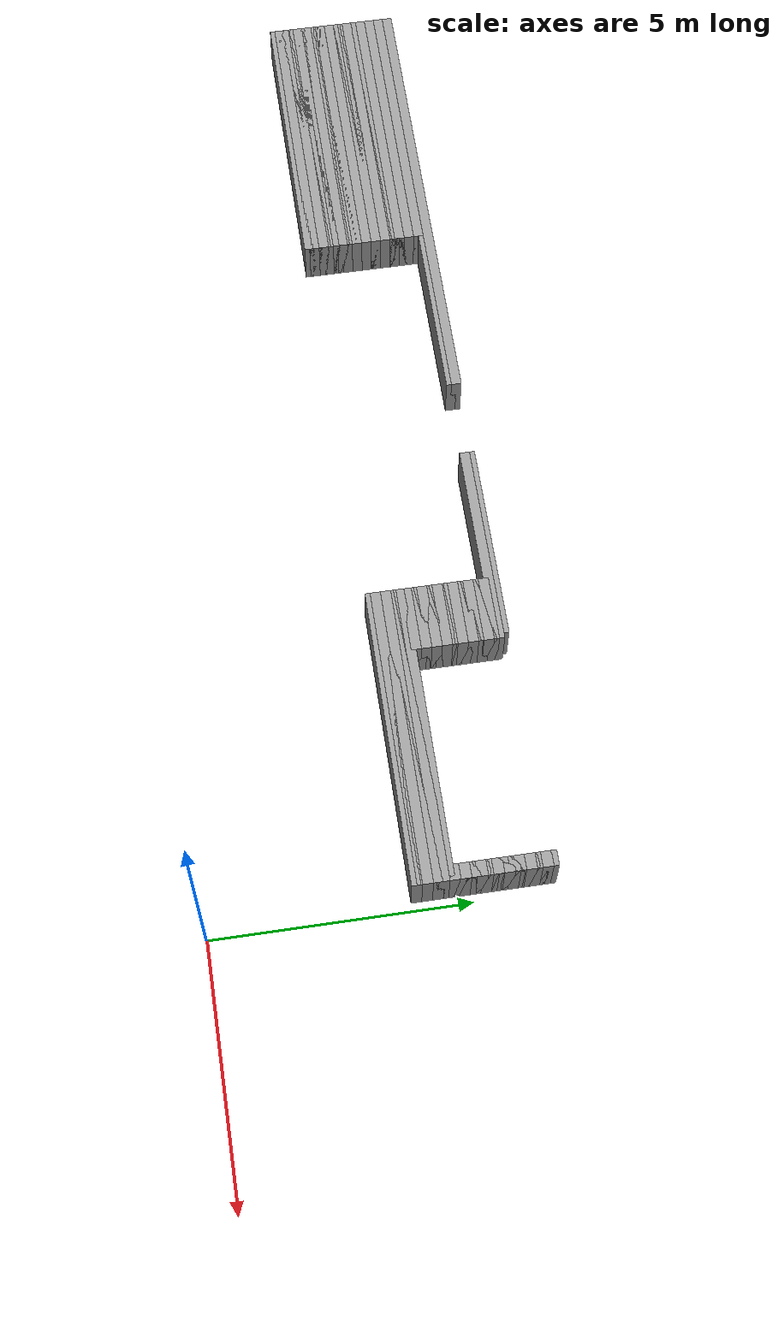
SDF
<sdf version="1.6">
 <world name="GridMap">
  <model name="GridMap">
   <link name="Wall_(169.5,38.0)">
    <collision name="Wall_(169.5,38.0)_Collision">
     <geometry><box><size>5.9 0.2 1.0</size></box></geometry>
     <pose>-16.95 3.8 0.5 0 -0 0</pose>
    </collision>
    <visual name="Wall_(169.5,38.0)_Visual">
     <geometry><box><size>5.9 0.2 1.0</size></box></geometry>
     <pose>-16.95 3.8 0.5 0 -0 0</pose>
     <material>
      <script><uri>file://media/materials/scripts/gazebo.material</uri><name>Gazebo/Grey</name></script>
      <ambient>1 1 1 1</ambient>
     </material>
     <meta><layer>0</layer></meta>
    </visual>
    <pose>0 0 0.5 0 -0 0</pose>
   </link>
   <link name="Wall_(29.5,39.0)">
    <collision name="Wall_(29.5,39.0)_Collision">
     <geometry><box><size>5.9 0.2 1.0</size></box></geometry>
     <pose>-2.95 3.9 0.5 0 -0 0</pose>
    </collision>
    <visual name="Wall_(29.5,39.0)_Visual">
     <geometry><box><size>5.9 0.2 1.0</size></box></geometry>
     <pose>-2.95 3.9 0.5 0 -0 0</pose>
     <material>
      <script><uri>file://media/materials/scripts/gazebo.material</uri><name>Gazebo/Grey</name></script>
      <ambient>1 1 1 1</ambient>
     </material>
     <meta><layer>0</layer></meta>
    </visual>
    <pose>0 0 0.5 0 -0 0</pose>
   </link>
   <link name="Wall_(169.5,39.0)">
    <collision name="Wall_(169.5,39.0)_Collision">
     <geometry><box><size>5.9 0.2 1.0</size></box></geometry>
     <pose>-16.95 3.9 0.5 0 -0 0</pose>
    </collision>
    <visual name="Wall_(169.5,39.0)_Visual">
     <geometry><box><size>5.9 0.2 1.0</size></box></geometry>
     <pose>-16.95 3.9 0.5 0 -0 0</pose>
     <material>
      <script><uri>file://media/materials/scripts/gazebo.material</uri><name>Gazebo/Grey</name></script>
      <ambient>1 1 1 1</ambient>
     </material>
     <meta><layer>0</layer></meta>
    </visual>
    <pose>0 0 0.5 0 -0 0</pose>
   </link>
   <link name="Wall_(29.5,40.0)">
    <collision name="Wall_(29.5,40.0)_Collision">
     <geometry><box><size>5.9 0.2 1.0</size></box></geometry>
     <pose>-2.95 4.0 0.5 0 -0 0</pose>
    </collision>
    <visual name="Wall_(29.5,40.0)_Visual">
     <geometry><box><size>5.9 0.2 1.0</size></box></geometry>
     <pose>-2.95 4.0 0.5 0 -0 0</pose>
     <material>
      <script><uri>file://media/materials/scripts/gazebo.material</uri><name>Gazebo/Grey</name></script>
      <ambient>1 1 1 1</ambient>
     </material>
     <meta><layer>0</layer></meta>
    </visual>
    <pose>0 0 0.5 0 -0 0</pose>
   </link>
   <link name="Wall_(169.5,40.0)">
    <collision name="Wall_(169.5,40.0)_Collision">
     <geometry><box><size>5.9 0.2 1.0</size></box></geometry>
     <pose>-16.95 4.0 0.5 0 -0 0</pose>
    </collision>
    <visual name="Wall_(169.5,40.0)_Visual">
     <geometry><box><size>5.9 0.2 1.0</size></box></geometry>
     <pose>-16.95 4.0 0.5 0 -0 0</pose>
     <material>
      <script><uri>file://media/materials/scripts/gazebo.material</uri><name>Gazebo/Grey</name></script>
      <ambient>1 1 1 1</ambient>
     </material>
     <meta><layer>0</layer></meta>
    </visual>
    <pose>0 0 0.5 0 -0 0</pose>
   </link>
   <link name="Wall_(29.5,41.0)">
    <collision name="Wall_(29.5,41.0)_Collision">
     <geometry><box><size>5.9 0.2 1.0</size></box></geometry>
     <pose>-2.95 4.1 0.5 0 -0 0</pose>
    </collision>
    <visual name="Wall_(29.5,41.0)_Visual">
     <geometry><box><size>5.9 0.2 1.0</size></box></geometry>
     <pose>-2.95 4.1 0.5 0 -0 0</pose>
     <material>
      <script><uri>file://media/materials/scripts/gazebo.material</uri><name>Gazebo/Grey</name></script>
      <ambient>1 1 1 1</ambient>
     </material>
     <meta><layer>0</layer></meta>
    </visual>
    <pose>0 0 0.5 0 -0 0</pose>
   </link>
   <link name="Wall_(169.5,41.0)">
    <collision name="Wall_(169.5,41.0)_Collision">
     <geometry><box><size>5.9 0.2 1.0</size></box></geometry>
     <pose>-16.95 4.1 0.5 0 -0 0</pose>
    </collision>
    <visual name="Wall_(169.5,41.0)_Visual">
     <geometry><box><size>5.9 0.2 1.0</size></box></geometry>
     <pose>-16.95 4.1 0.5 0 -0 0</pose>
     <material>
      <script><uri>file://media/materials/scripts/gazebo.material</uri><name>Gazebo/Grey</name></script>
      <ambient>1 1 1 1</ambient>
     </material>
     <meta><layer>0</layer></meta>
    </visual>
    <pose>0 0 0.5 0 -0 0</pose>
   </link>
   <link name="Wall_(29.5,42.0)">
    <collision name="Wall_(29.5,42.0)_Collision">
     <geometry><box><size>5.9 0.2 1.0</size></box></geometry>
     <pose>-2.95 4.2 0.5 0 -0 0</pose>
    </collision>
    <visual name="Wall_(29.5,42.0)_Visual">
     <geometry><box><size>5.9 0.2 1.0</size></box></geometry>
     <pose>-2.95 4.2 0.5 0 -0 0</pose>
     <material>
      <script><uri>file://media/materials/scripts/gazebo.material</uri><name>Gazebo/Grey</name></script>
      <ambient>1 1 1 1</ambient>
     </material>
     <meta><layer>0</layer></meta>
    </visual>
    <pose>0 0 0.5 0 -0 0</pose>
   </link>
   <link name="Wall_(169.5,42.0)">
    <collision name="Wall_(169.5,42.0)_Collision">
     <geometry><box><size>5.9 0.2 1.0</size></box></geometry>
     <pose>-16.95 4.2 0.5 0 -0 0</pose>
    </collision>
    <visual name="Wall_(169.5,42.0)_Visual">
     <geometry><box><size>5.9 0.2 1.0</size></box></geometry>
     <pose>-16.95 4.2 0.5 0 -0 0</pose>
     <material>
      <script><uri>file://media/materials/scripts/gazebo.material</uri><name>Gazebo/Grey</name></script>
      <ambient>1 1 1 1</ambient>
     </material>
     <meta><layer>0</layer></meta>
    </visual>
    <pose>0 0 0.5 0 -0 0</pose>
   </link>
   <link name="Wall_(29.5,43.0)">
    <collision name="Wall_(29.5,43.0)_Collision">
     <geometry><box><size>5.9 0.2 1.0</size></box></geometry>
     <pose>-2.95 4.3 0.5 0 -0 0</pose>
    </collision>
    <visual name="Wall_(29.5,43.0)_Visual">
     <geometry><box><size>5.9 0.2 1.0</size></box></geometry>
     <pose>-2.95 4.3 0.5 0 -0 0</pose>
     <material>
      <script><uri>file://media/materials/scripts/gazebo.material</uri><name>Gazebo/Grey</name></script>
      <ambient>1 1 1 1</ambient>
     </material>
     <meta><layer>0</layer></meta>
    </visual>
    <pose>0 0 0.5 0 -0 0</pose>
   </link>
   <link name="Wall_(169.5,43.0)">
    <collision name="Wall_(169.5,43.0)_Collision">
     <geometry><box><size>5.9 0.2 1.0</size></box></geometry>
     <pose>-16.95 4.3 0.5 0 -0 0</pose>
    </collision>
    <visual name="Wall_(169.5,43.0)_Visual">
     <geometry><box><size>5.9 0.2 1.0</size></box></geometry>
     <pose>-16.95 4.3 0.5 0 -0 0</pose>
     <material>
      <script><uri>file://media/materials/scripts/gazebo.material</uri><name>Gazebo/Grey</name></script>
      <ambient>1 1 1 1</ambient>
     </material>
     <meta><layer>0</layer></meta>
    </visual>
    <pose>0 0 0.5 0 -0 0</pose>
   </link>
   <link name="Wall_(29.5,44.0)">
    <collision name="Wall_(29.5,44.0)_Collision">
     <geometry><box><size>5.9 0.2 1.0</size></box></geometry>
     <pose>-2.95 4.4 0.5 0 -0 0</pose>
    </collision>
    <visual name="Wall_(29.5,44.0)_Visual">
     <geometry><box><size>5.9 0.2 1.0</size></box></geometry>
     <pose>-2.95 4.4 0.5 0 -0 0</pose>
     <material>
      <script><uri>file://media/materials/scripts/gazebo.material</uri><name>Gazebo/Grey</name></script>
      <ambient>1 1 1 1</ambient>
     </material>
     <meta><layer>0</layer></meta>
    </visual>
    <pose>0 0 0.5 0 -0 0</pose>
   </link>
   <link name="Wall_(169.5,44.0)">
    <collision name="Wall_(169.5,44.0)_Collision">
     <geometry><box><size>5.9 0.2 1.0</size></box></geometry>
     <pose>-16.95 4.4 0.5 0 -0 0</pose>
    </collision>
    <visual name="Wall_(169.5,44.0)_Visual">
     <geometry><box><size>5.9 0.2 1.0</size></box></geometry>
     <pose>-16.95 4.4 0.5 0 -0 0</pose>
     <material>
      <script><uri>file://media/materials/scripts/gazebo.material</uri><name>Gazebo/Grey</name></script>
      <ambient>1 1 1 1</ambient>
     </material>
     <meta><layer>0</layer></meta>
    </visual>
    <pose>0 0 0.5 0 -0 0</pose>
   </link>
   <link name="Wall_(29.5,45.0)">
    <collision name="Wall_(29.5,45.0)_Collision">
     <geometry><box><size>5.9 0.2 1.0</size></box></geometry>
     <pose>-2.95 4.5 0.5 0 -0 0</pose>
    </collision>
    <visual name="Wall_(29.5,45.0)_Visual">
     <geometry><box><size>5.9 0.2 1.0</size></box></geometry>
     <pose>-2.95 4.5 0.5 0 -0 0</pose>
     <material>
      <script><uri>file://media/materials/scripts/gazebo.material</uri><name>Gazebo/Grey</name></script>
      <ambient>1 1 1 1</ambient>
     </material>
     <meta><layer>0</layer></meta>
    </visual>
    <pose>0 0 0.5 0 -0 0</pose>
   </link>
   <link name="Wall_(169.5,45.0)">
    <collision name="Wall_(169.5,45.0)_Collision">
     <geometry><box><size>5.9 0.2 1.0</size></box></geometry>
     <pose>-16.95 4.5 0.5 0 -0 0</pose>
    </collision>
    <visual name="Wall_(169.5,45.0)_Visual">
     <geometry><box><size>5.9 0.2 1.0</size></box></geometry>
     <pose>-16.95 4.5 0.5 0 -0 0</pose>
     <material>
      <script><uri>file://media/materials/scripts/gazebo.material</uri><name>Gazebo/Grey</name></script>
      <ambient>1 1 1 1</ambient>
     </material>
     <meta><layer>0</layer></meta>
    </visual>
    <pose>0 0 0.5 0 -0 0</pose>
   </link>
   <link name="Wall_(1.5,46.0)">
    <collision name="Wall_(1.5,46.0)_Collision">
     <geometry><box><size>0.3 0.2 1.0</size></box></geometry>
     <pose>-0.15 4.6 0.5 0 -0 0</pose>
    </collision>
    <visual name="Wall_(1.5,46.0)_Visual">
     <geometry><box><size>0.3 0.2 1.0</size></box></geometry>
     <pose>-0.15 4.6 0.5 0 -0 0</pose>
     <material>
      <script><uri>file://media/materials/scripts/gazebo.material</uri><name>Gazebo/Grey</name></script>
      <ambient>1 1 1 1</ambient>
     </material>
     <meta><layer>0</layer></meta>
    </visual>
    <pose>0 0 0.5 0 -0 0</pose>
   </link>
   <link name="Wall_(52.5,46.0)">
    <collision name="Wall_(52.5,46.0)_Collision">
     <geometry><box><size>1.3 0.2 1.0</size></box></geometry>
     <pose>-5.25 4.6 0.5 0 -0 0</pose>
    </collision>
    <visual name="Wall_(52.5,46.0)_Visual">
     <geometry><box><size>1.3 0.2 1.0</size></box></geometry>
     <pose>-5.25 4.6 0.5 0 -0 0</pose>
     <material>
      <script><uri>file://media/materials/scripts/gazebo.material</uri><name>Gazebo/Grey</name></script>
      <ambient>1 1 1 1</ambient>
     </material>
     <meta><layer>0</layer></meta>
    </visual>
    <pose>0 0 0.5 0 -0 0</pose>
   </link>
   <link name="Wall_(169.5,46.0)">
    <collision name="Wall_(169.5,46.0)_Collision">
     <geometry><box><size>5.9 0.2 1.0</size></box></geometry>
     <pose>-16.95 4.6 0.5 0 -0 0</pose>
    </collision>
    <visual name="Wall_(169.5,46.0)_Visual">
     <geometry><box><size>5.9 0.2 1.0</size></box></geometry>
     <pose>-16.95 4.6 0.5 0 -0 0</pose>
     <material>
      <script><uri>file://media/materials/scripts/gazebo.material</uri><name>Gazebo/Grey</name></script>
      <ambient>1 1 1 1</ambient>
     </material>
     <meta><layer>0</layer></meta>
    </visual>
    <pose>0 0 0.5 0 -0 0</pose>
   </link>
   <link name="Wall_(1.5,47.0)">
    <collision name="Wall_(1.5,47.0)_Collision">
     <geometry><box><size>0.3 0.2 1.0</size></box></geometry>
     <pose>-0.15 4.7 0.5 0 -0 0</pose>
    </collision>
    <visual name="Wall_(1.5,47.0)_Visual">
     <geometry><box><size>0.3 0.2 1.0</size></box></geometry>
     <pose>-0.15 4.7 0.5 0 -0 0</pose>
     <material>
      <script><uri>file://media/materials/scripts/gazebo.material</uri><name>Gazebo/Grey</name></script>
      <ambient>1 1 1 1</ambient>
     </material>
     <meta><layer>0</layer></meta>
    </visual>
    <pose>0 0 0.5 0 -0 0</pose>
   </link>
   <link name="Wall_(52.5,47.0)">
    <collision name="Wall_(52.5,47.0)_Collision">
     <geometry><box><size>1.3 0.2 1.0</size></box></geometry>
     <pose>-5.25 4.7 0.5 0 -0 0</pose>
    </collision>
    <visual name="Wall_(52.5,47.0)_Visual">
     <geometry><box><size>1.3 0.2 1.0</size></box></geometry>
     <pose>-5.25 4.7 0.5 0 -0 0</pose>
     <material>
      <script><uri>file://media/materials/scripts/gazebo.material</uri><name>Gazebo/Grey</name></script>
      <ambient>1 1 1 1</ambient>
     </material>
     <meta><layer>0</layer></meta>
    </visual>
    <pose>0 0 0.5 0 -0 0</pose>
   </link>
   <link name="Wall_(169.5,47.0)">
    <collision name="Wall_(169.5,47.0)_Collision">
     <geometry><box><size>5.9 0.2 1.0</size></box></geometry>
     <pose>-16.95 4.7 0.5 0 -0 0</pose>
    </collision>
    <visual name="Wall_(169.5,47.0)_Visual">
     <geometry><box><size>5.9 0.2 1.0</size></box></geometry>
     <pose>-16.95 4.7 0.5 0 -0 0</pose>
     <material>
      <script><uri>file://media/materials/scripts/gazebo.material</uri><name>Gazebo/Grey</name></script>
      <ambient>1 1 1 1</ambient>
     </material>
     <meta><layer>0</layer></meta>
    </visual>
    <pose>0 0 0.5 0 -0 0</pose>
   </link>
   <link name="Wall_(1.5,48.0)">
    <collision name="Wall_(1.5,48.0)_Collision">
     <geometry><box><size>0.3 0.2 1.0</size></box></geometry>
     <pose>-0.15 4.8 0.5 0 -0 0</pose>
    </collision>
    <visual name="Wall_(1.5,48.0)_Visual">
     <geometry><box><size>0.3 0.2 1.0</size></box></geometry>
     <pose>-0.15 4.8 0.5 0 -0 0</pose>
     <material>
      <script><uri>file://media/materials/scripts/gazebo.material</uri><name>Gazebo/Grey</name></script>
      <ambient>1 1 1 1</ambient>
     </material>
     <meta><layer>0</layer></meta>
    </visual>
    <pose>0 0 0.5 0 -0 0</pose>
   </link>
   <link name="Wall_(52.5,48.0)">
    <collision name="Wall_(52.5,48.0)_Collision">
     <geometry><box><size>1.3 0.2 1.0</size></box></geometry>
     <pose>-5.25 4.8 0.5 0 -0 0</pose>
    </collision>
    <visual name="Wall_(52.5,48.0)_Visual">
     <geometry><box><size>1.3 0.2 1.0</size></box></geometry>
     <pose>-5.25 4.8 0.5 0 -0 0</pose>
     <material>
      <script><uri>file://media/materials/scripts/gazebo.material</uri><name>Gazebo/Grey</name></script>
      <ambient>1 1 1 1</ambient>
     </material>
     <meta><layer>0</layer></meta>
    </visual>
    <pose>0 0 0.5 0 -0 0</pose>
   </link>
   <link name="Wall_(169.5,48.0)">
    <collision name="Wall_(169.5,48.0)_Collision">
     <geometry><box><size>5.9 0.2 1.0</size></box></geometry>
     <pose>-16.95 4.8 0.5 0 -0 0</pose>
    </collision>
    <visual name="Wall_(169.5,48.0)_Visual">
     <geometry><box><size>5.9 0.2 1.0</size></box></geometry>
     <pose>-16.95 4.8 0.5 0 -0 0</pose>
     <material>
      <script><uri>file://media/materials/scripts/gazebo.material</uri><name>Gazebo/Grey</name></script>
      <ambient>1 1 1 1</ambient>
     </material>
     <meta><layer>0</layer></meta>
    </visual>
    <pose>0 0 0.5 0 -0 0</pose>
   </link>
   <link name="Wall_(1.5,49.0)">
    <collision name="Wall_(1.5,49.0)_Collision">
     <geometry><box><size>0.3 0.2 1.0</size></box></geometry>
     <pose>-0.15 4.9 0.5 0 -0 0</pose>
    </collision>
    <visual name="Wall_(1.5,49.0)_Visual">
     <geometry><box><size>0.3 0.2 1.0</size></box></geometry>
     <pose>-0.15 4.9 0.5 0 -0 0</pose>
     <material>
      <script><uri>file://media/materials/scripts/gazebo.material</uri><name>Gazebo/Grey</name></script>
      <ambient>1 1 1 1</ambient>
     </material>
     <meta><layer>0</layer></meta>
    </visual>
    <pose>0 0 0.5 0 -0 0</pose>
   </link>
   <link name="Wall_(52.5,49.0)">
    <collision name="Wall_(52.5,49.0)_Collision">
     <geometry><box><size>1.3 0.2 1.0</size></box></geometry>
     <pose>-5.25 4.9 0.5 0 -0 0</pose>
    </collision>
    <visual name="Wall_(52.5,49.0)_Visual">
     <geometry><box><size>1.3 0.2 1.0</size></box></geometry>
     <pose>-5.25 4.9 0.5 0 -0 0</pose>
     <material>
      <script><uri>file://media/materials/scripts/gazebo.material</uri><name>Gazebo/Grey</name></script>
      <ambient>1 1 1 1</ambient>
     </material>
     <meta><layer>0</layer></meta>
    </visual>
    <pose>0 0 0.5 0 -0 0</pose>
   </link>
   <link name="Wall_(169.5,49.0)">
    <collision name="Wall_(169.5,49.0)_Collision">
     <geometry><box><size>5.9 0.2 1.0</size></box></geometry>
     <pose>-16.95 4.9 0.5 0 -0 0</pose>
    </collision>
    <visual name="Wall_(169.5,49.0)_Visual">
     <geometry><box><size>5.9 0.2 1.0</size></box></geometry>
     <pose>-16.95 4.9 0.5 0 -0 0</pose>
     <material>
      <script><uri>file://media/materials/scripts/gazebo.material</uri><name>Gazebo/Grey</name></script>
      <ambient>1 1 1 1</ambient>
     </material>
     <meta><layer>0</layer></meta>
    </visual>
    <pose>0 0 0.5 0 -0 0</pose>
   </link>
   <link name="Wall_(1.5,50.0)">
    <collision name="Wall_(1.5,50.0)_Collision">
     <geometry><box><size>0.3 0.2 1.0</size></box></geometry>
     <pose>-0.15 5.0 0.5 0 -0 0</pose>
    </collision>
    <visual name="Wall_(1.5,50.0)_Visual">
     <geometry><box><size>0.3 0.2 1.0</size></box></geometry>
     <pose>-0.15 5.0 0.5 0 -0 0</pose>
     <material>
      <script><uri>file://media/materials/scripts/gazebo.material</uri><name>Gazebo/Grey</name></script>
      <ambient>1 1 1 1</ambient>
     </material>
     <meta><layer>0</layer></meta>
    </visual>
    <pose>0 0 0.5 0 -0 0</pose>
   </link>
   <link name="Wall_(52.5,50.0)">
    <collision name="Wall_(52.5,50.0)_Collision">
     <geometry><box><size>1.3 0.2 1.0</size></box></geometry>
     <pose>-5.25 5.0 0.5 0 -0 0</pose>
    </collision>
    <visual name="Wall_(52.5,50.0)_Visual">
     <geometry><box><size>1.3 0.2 1.0</size></box></geometry>
     <pose>-5.25 5.0 0.5 0 -0 0</pose>
     <material>
      <script><uri>file://media/materials/scripts/gazebo.material</uri><name>Gazebo/Grey</name></script>
      <ambient>1 1 1 1</ambient>
     </material>
     <meta><layer>0</layer></meta>
    </visual>
    <pose>0 0 0.5 0 -0 0</pose>
   </link>
   <link name="Wall_(169.5,50.0)">
    <collision name="Wall_(169.5,50.0)_Collision">
     <geometry><box><size>5.9 0.2 1.0</size></box></geometry>
     <pose>-16.95 5.0 0.5 0 -0 0</pose>
    </collision>
    <visual name="Wall_(169.5,50.0)_Visual">
     <geometry><box><size>5.9 0.2 1.0</size></box></geometry>
     <pose>-16.95 5.0 0.5 0 -0 0</pose>
     <material>
      <script><uri>file://media/materials/scripts/gazebo.material</uri><name>Gazebo/Grey</name></script>
      <ambient>1 1 1 1</ambient>
     </material>
     <meta><layer>0</layer></meta>
    </visual>
    <pose>0 0 0.5 0 -0 0</pose>
   </link>
   <link name="Wall_(1.5,51.0)">
    <collision name="Wall_(1.5,51.0)_Collision">
     <geometry><box><size>0.3 0.2 1.0</size></box></geometry>
     <pose>-0.15 5.1 0.5 0 -0 0</pose>
    </collision>
    <visual name="Wall_(1.5,51.0)_Visual">
     <geometry><box><size>0.3 0.2 1.0</size></box></geometry>
     <pose>-0.15 5.1 0.5 0 -0 0</pose>
     <material>
      <script><uri>file://media/materials/scripts/gazebo.material</uri><name>Gazebo/Grey</name></script>
      <ambient>1 1 1 1</ambient>
     </material>
     <meta><layer>0</layer></meta>
    </visual>
    <pose>0 0 0.5 0 -0 0</pose>
   </link>
   <link name="Wall_(52.5,51.0)">
    <collision name="Wall_(52.5,51.0)_Collision">
     <geometry><box><size>1.3 0.2 1.0</size></box></geometry>
     <pose>-5.25 5.1 0.5 0 -0 0</pose>
    </collision>
    <visual name="Wall_(52.5,51.0)_Visual">
     <geometry><box><size>1.3 0.2 1.0</size></box></geometry>
     <pose>-5.25 5.1 0.5 0 -0 0</pose>
     <material>
      <script><uri>file://media/materials/scripts/gazebo.material</uri><name>Gazebo/Grey</name></script>
      <ambient>1 1 1 1</ambient>
     </material>
     <meta><layer>0</layer></meta>
    </visual>
    <pose>0 0 0.5 0 -0 0</pose>
   </link>
   <link name="Wall_(169.5,51.0)">
    <collision name="Wall_(169.5,51.0)_Collision">
     <geometry><box><size>5.9 0.2 1.0</size></box></geometry>
     <pose>-16.95 5.1 0.5 0 -0 0</pose>
    </collision>
    <visual name="Wall_(169.5,51.0)_Visual">
     <geometry><box><size>5.9 0.2 1.0</size></box></geometry>
     <pose>-16.95 5.1 0.5 0 -0 0</pose>
     <material>
      <script><uri>file://media/materials/scripts/gazebo.material</uri><name>Gazebo/Grey</name></script>
      <ambient>1 1 1 1</ambient>
     </material>
     <meta><layer>0</layer></meta>
    </visual>
    <pose>0 0 0.5 0 -0 0</pose>
   </link>
   <link name="Wall_(1.5,52.0)">
    <collision name="Wall_(1.5,52.0)_Collision">
     <geometry><box><size>0.3 0.2 1.0</size></box></geometry>
     <pose>-0.15 5.2 0.5 0 -0 0</pose>
    </collision>
    <visual name="Wall_(1.5,52.0)_Visual">
     <geometry><box><size>0.3 0.2 1.0</size></box></geometry>
     <pose>-0.15 5.2 0.5 0 -0 0</pose>
     <material>
      <script><uri>file://media/materials/scripts/gazebo.material</uri><name>Gazebo/Grey</name></script>
      <ambient>1 1 1 1</ambient>
     </material>
     <meta><layer>0</layer></meta>
    </visual>
    <pose>0 0 0.5 0 -0 0</pose>
   </link>
   <link name="Wall_(52.5,52.0)">
    <collision name="Wall_(52.5,52.0)_Collision">
     <geometry><box><size>1.3 0.2 1.0</size></box></geometry>
     <pose>-5.25 5.2 0.5 0 -0 0</pose>
    </collision>
    <visual name="Wall_(52.5,52.0)_Visual">
     <geometry><box><size>1.3 0.2 1.0</size></box></geometry>
     <pose>-5.25 5.2 0.5 0 -0 0</pose>
     <material>
      <script><uri>file://media/materials/scripts/gazebo.material</uri><name>Gazebo/Grey</name></script>
      <ambient>1 1 1 1</ambient>
     </material>
     <meta><layer>0</layer></meta>
    </visual>
    <pose>0 0 0.5 0 -0 0</pose>
   </link>
   <link name="Wall_(169.5,52.0)">
    <collision name="Wall_(169.5,52.0)_Collision">
     <geometry><box><size>5.9 0.2 1.0</size></box></geometry>
     <pose>-16.95 5.2 0.5 0 -0 0</pose>
    </collision>
    <visual name="Wall_(169.5,52.0)_Visual">
     <geometry><box><size>5.9 0.2 1.0</size></box></geometry>
     <pose>-16.95 5.2 0.5 0 -0 0</pose>
     <material>
      <script><uri>file://media/materials/scripts/gazebo.material</uri><name>Gazebo/Grey</name></script>
      <ambient>1 1 1 1</ambient>
     </material>
     <meta><layer>0</layer></meta>
    </visual>
    <pose>0 0 0.5 0 -0 0</pose>
   </link>
   <link name="Wall_(1.5,53.0)">
    <collision name="Wall_(1.5,53.0)_Collision">
     <geometry><box><size>0.3 0.2 1.0</size></box></geometry>
     <pose>-0.15 5.3 0.5 0 -0 0</pose>
    </collision>
    <visual name="Wall_(1.5,53.0)_Visual">
     <geometry><box><size>0.3 0.2 1.0</size></box></geometry>
     <pose>-0.15 5.3 0.5 0 -0 0</pose>
     <material>
      <script><uri>file://media/materials/scripts/gazebo.material</uri><name>Gazebo/Grey</name></script>
      <ambient>1 1 1 1</ambient>
     </material>
     <meta><layer>0</layer></meta>
    </visual>
    <pose>0 0 0.5 0 -0 0</pose>
   </link>
   <link name="Wall_(52.5,53.0)">
    <collision name="Wall_(52.5,53.0)_Collision">
     <geometry><box><size>1.3 0.2 1.0</size></box></geometry>
     <pose>-5.25 5.3 0.5 0 -0 0</pose>
    </collision>
    <visual name="Wall_(52.5,53.0)_Visual">
     <geometry><box><size>1.3 0.2 1.0</size></box></geometry>
     <pose>-5.25 5.3 0.5 0 -0 0</pose>
     <material>
      <script><uri>file://media/materials/scripts/gazebo.material</uri><name>Gazebo/Grey</name></script>
      <ambient>1 1 1 1</ambient>
     </material>
     <meta><layer>0</layer></meta>
    </visual>
    <pose>0 0 0.5 0 -0 0</pose>
   </link>
   <link name="Wall_(169.5,53.0)">
    <collision name="Wall_(169.5,53.0)_Collision">
     <geometry><box><size>5.9 0.2 1.0</size></box></geometry>
     <pose>-16.95 5.3 0.5 0 -0 0</pose>
    </collision>
    <visual name="Wall_(169.5,53.0)_Visual">
     <geometry><box><size>5.9 0.2 1.0</size></box></geometry>
     <pose>-16.95 5.3 0.5 0 -0 0</pose>
     <material>
      <script><uri>file://media/materials/scripts/gazebo.material</uri><name>Gazebo/Grey</name></script>
      <ambient>1 1 1 1</ambient>
     </material>
     <meta><layer>0</layer></meta>
    </visual>
    <pose>0 0 0.5 0 -0 0</pose>
   </link>
   <link name="Wall_(1.5,54.0)">
    <collision name="Wall_(1.5,54.0)_Collision">
     <geometry><box><size>0.3 0.2 1.0</size></box></geometry>
     <pose>-0.15 5.4 0.5 0 -0 0</pose>
    </collision>
    <visual name="Wall_(1.5,54.0)_Visual">
     <geometry><box><size>0.3 0.2 1.0</size></box></geometry>
     <pose>-0.15 5.4 0.5 0 -0 0</pose>
     <material>
      <script><uri>file://media/materials/scripts/gazebo.material</uri><name>Gazebo/Grey</name></script>
      <ambient>1 1 1 1</ambient>
     </material>
     <meta><layer>0</layer></meta>
    </visual>
    <pose>0 0 0.5 0 -0 0</pose>
   </link>
   <link name="Wall_(52.5,54.0)">
    <collision name="Wall_(52.5,54.0)_Collision">
     <geometry><box><size>1.3 0.2 1.0</size></box></geometry>
     <pose>-5.25 5.4 0.5 0 -0 0</pose>
    </collision>
    <visual name="Wall_(52.5,54.0)_Visual">
     <geometry><box><size>1.3 0.2 1.0</size></box></geometry>
     <pose>-5.25 5.4 0.5 0 -0 0</pose>
     <material>
      <script><uri>file://media/materials/scripts/gazebo.material</uri><name>Gazebo/Grey</name></script>
      <ambient>1 1 1 1</ambient>
     </material>
     <meta><layer>0</layer></meta>
    </visual>
    <pose>0 0 0.5 0 -0 0</pose>
   </link>
   <link name="Wall_(169.5,54.0)">
    <collision name="Wall_(169.5,54.0)_Collision">
     <geometry><box><size>5.9 0.2 1.0</size></box></geometry>
     <pose>-16.95 5.4 0.5 0 -0 0</pose>
    </collision>
    <visual name="Wall_(169.5,54.0)_Visual">
     <geometry><box><size>5.9 0.2 1.0</size></box></geometry>
     <pose>-16.95 5.4 0.5 0 -0 0</pose>
     <material>
      <script><uri>file://media/materials/scripts/gazebo.material</uri><name>Gazebo/Grey</name></script>
      <ambient>1 1 1 1</ambient>
     </material>
     <meta><layer>0</layer></meta>
    </visual>
    <pose>0 0 0.5 0 -0 0</pose>
   </link>
   <link name="Wall_(1.5,55.0)">
    <collision name="Wall_(1.5,55.0)_Collision">
     <geometry><box><size>0.3 0.2 1.0</size></box></geometry>
     <pose>-0.15 5.5 0.5 0 -0 0</pose>
    </collision>
    <visual name="Wall_(1.5,55.0)_Visual">
     <geometry><box><size>0.3 0.2 1.0</size></box></geometry>
     <pose>-0.15 5.5 0.5 0 -0 0</pose>
     <material>
      <script><uri>file://media/materials/scripts/gazebo.material</uri><name>Gazebo/Grey</name></script>
      <ambient>1 1 1 1</ambient>
     </material>
     <meta><layer>0</layer></meta>
    </visual>
    <pose>0 0 0.5 0 -0 0</pose>
   </link>
   <link name="Wall_(52.5,55.0)">
    <collision name="Wall_(52.5,55.0)_Collision">
     <geometry><box><size>1.3 0.2 1.0</size></box></geometry>
     <pose>-5.25 5.5 0.5 0 -0 0</pose>
    </collision>
    <visual name="Wall_(52.5,55.0)_Visual">
     <geometry><box><size>1.3 0.2 1.0</size></box></geometry>
     <pose>-5.25 5.5 0.5 0 -0 0</pose>
     <material>
      <script><uri>file://media/materials/scripts/gazebo.material</uri><name>Gazebo/Grey</name></script>
      <ambient>1 1 1 1</ambient>
     </material>
     <meta><layer>0</layer></meta>
    </visual>
    <pose>0 0 0.5 0 -0 0</pose>
   </link>
   <link name="Wall_(169.5,55.0)">
    <collision name="Wall_(169.5,55.0)_Collision">
     <geometry><box><size>5.9 0.2 1.0</size></box></geometry>
     <pose>-16.95 5.5 0.5 0 -0 0</pose>
    </collision>
    <visual name="Wall_(169.5,55.0)_Visual">
     <geometry><box><size>5.9 0.2 1.0</size></box></geometry>
     <pose>-16.95 5.5 0.5 0 -0 0</pose>
     <material>
      <script><uri>file://media/materials/scripts/gazebo.material</uri><name>Gazebo/Grey</name></script>
      <ambient>1 1 1 1</ambient>
     </material>
     <meta><layer>0</layer></meta>
    </visual>
    <pose>0 0 0.5 0 -0 0</pose>
   </link>
   <link name="Wall_(1.5,56.0)">
    <collision name="Wall_(1.5,56.0)_Collision">
     <geometry><box><size>0.3 0.2 1.0</size></box></geometry>
     <pose>-0.15 5.6 0.5 0 -0 0</pose>
    </collision>
    <visual name="Wall_(1.5,56.0)_Visual">
     <geometry><box><size>0.3 0.2 1.0</size></box></geometry>
     <pose>-0.15 5.6 0.5 0 -0 0</pose>
     <material>
      <script><uri>file://media/materials/scripts/gazebo.material</uri><name>Gazebo/Grey</name></script>
      <ambient>1 1 1 1</ambient>
     </material>
     <meta><layer>0</layer></meta>
    </visual>
    <pose>0 0 0.5 0 -0 0</pose>
   </link>
   <link name="Wall_(52.5,56.0)">
    <collision name="Wall_(52.5,56.0)_Collision">
     <geometry><box><size>1.3 0.2 1.0</size></box></geometry>
     <pose>-5.25 5.6 0.5 0 -0 0</pose>
    </collision>
    <visual name="Wall_(52.5,56.0)_Visual">
     <geometry><box><size>1.3 0.2 1.0</size></box></geometry>
     <pose>-5.25 5.6 0.5 0 -0 0</pose>
     <material>
      <script><uri>file://media/materials/scripts/gazebo.material</uri><name>Gazebo/Grey</name></script>
      <ambient>1 1 1 1</ambient>
     </material>
     <meta><layer>0</layer></meta>
    </visual>
    <pose>0 0 0.5 0 -0 0</pose>
   </link>
   <link name="Wall_(169.5,56.0)">
    <collision name="Wall_(169.5,56.0)_Collision">
     <geometry><box><size>5.9 0.2 1.0</size></box></geometry>
     <pose>-16.95 5.6 0.5 0 -0 0</pose>
    </collision>
    <visual name="Wall_(169.5,56.0)_Visual">
     <geometry><box><size>5.9 0.2 1.0</size></box></geometry>
     <pose>-16.95 5.6 0.5 0 -0 0</pose>
     <material>
      <script><uri>file://media/materials/scripts/gazebo.material</uri><name>Gazebo/Grey</name></script>
      <ambient>1 1 1 1</ambient>
     </material>
     <meta><layer>0</layer></meta>
    </visual>
    <pose>0 0 0.5 0 -0 0</pose>
   </link>
   <link name="Wall_(1.5,57.0)">
    <collision name="Wall_(1.5,57.0)_Collision">
     <geometry><box><size>0.3 0.2 1.0</size></box></geometry>
     <pose>-0.15 5.7 0.5 0 -0 0</pose>
    </collision>
    <visual name="Wall_(1.5,57.0)_Visual">
     <geometry><box><size>0.3 0.2 1.0</size></box></geometry>
     <pose>-0.15 5.7 0.5 0 -0 0</pose>
     <material>
      <script><uri>file://media/materials/scripts/gazebo.material</uri><name>Gazebo/Grey</name></script>
      <ambient>1 1 1 1</ambient>
     </material>
     <meta><layer>0</layer></meta>
    </visual>
    <pose>0 0 0.5 0 -0 0</pose>
   </link>
   <link name="Wall_(52.5,57.0)">
    <collision name="Wall_(52.5,57.0)_Collision">
     <geometry><box><size>1.3 0.2 1.0</size></box></geometry>
     <pose>-5.25 5.7 0.5 0 -0 0</pose>
    </collision>
    <visual name="Wall_(52.5,57.0)_Visual">
     <geometry><box><size>1.3 0.2 1.0</size></box></geometry>
     <pose>-5.25 5.7 0.5 0 -0 0</pose>
     <material>
      <script><uri>file://media/materials/scripts/gazebo.material</uri><name>Gazebo/Grey</name></script>
      <ambient>1 1 1 1</ambient>
     </material>
     <meta><layer>0</layer></meta>
    </visual>
    <pose>0 0 0.5 0 -0 0</pose>
   </link>
   <link name="Wall_(169.5,57.0)">
    <collision name="Wall_(169.5,57.0)_Collision">
     <geometry><box><size>5.9 0.2 1.0</size></box></geometry>
     <pose>-16.95 5.7 0.5 0 -0 0</pose>
    </collision>
    <visual name="Wall_(169.5,57.0)_Visual">
     <geometry><box><size>5.9 0.2 1.0</size></box></geometry>
     <pose>-16.95 5.7 0.5 0 -0 0</pose>
     <material>
      <script><uri>file://media/materials/scripts/gazebo.material</uri><name>Gazebo/Grey</name></script>
      <ambient>1 1 1 1</ambient>
     </material>
     <meta><layer>0</layer></meta>
    </visual>
    <pose>0 0 0.5 0 -0 0</pose>
   </link>
   <link name="Wall_(1.5,58.0)">
    <collision name="Wall_(1.5,58.0)_Collision">
     <geometry><box><size>0.3 0.2 1.0</size></box></geometry>
     <pose>-0.15 5.8 0.5 0 -0 0</pose>
    </collision>
    <visual name="Wall_(1.5,58.0)_Visual">
     <geometry><box><size>0.3 0.2 1.0</size></box></geometry>
     <pose>-0.15 5.8 0.5 0 -0 0</pose>
     <material>
      <script><uri>file://media/materials/scripts/gazebo.material</uri><name>Gazebo/Grey</name></script>
      <ambient>1 1 1 1</ambient>
     </material>
     <meta><layer>0</layer></meta>
    </visual>
    <pose>0 0 0.5 0 -0 0</pose>
   </link>
   <link name="Wall_(52.5,58.0)">
    <collision name="Wall_(52.5,58.0)_Collision">
     <geometry><box><size>1.3 0.2 1.0</size></box></geometry>
     <pose>-5.25 5.8 0.5 0 -0 0</pose>
    </collision>
    <visual name="Wall_(52.5,58.0)_Visual">
     <geometry><box><size>1.3 0.2 1.0</size></box></geometry>
     <pose>-5.25 5.8 0.5 0 -0 0</pose>
     <material>
      <script><uri>file://media/materials/scripts/gazebo.material</uri><name>Gazebo/Grey</name></script>
      <ambient>1 1 1 1</ambient>
     </material>
     <meta><layer>0</layer></meta>
    </visual>
    <pose>0 0 0.5 0 -0 0</pose>
   </link>
   <link name="Wall_(169.5,58.0)">
    <collision name="Wall_(169.5,58.0)_Collision">
     <geometry><box><size>5.9 0.2 1.0</size></box></geometry>
     <pose>-16.95 5.8 0.5 0 -0 0</pose>
    </collision>
    <visual name="Wall_(169.5,58.0)_Visual">
     <geometry><box><size>5.9 0.2 1.0</size></box></geometry>
     <pose>-16.95 5.8 0.5 0 -0 0</pose>
     <material>
      <script><uri>file://media/materials/scripts/gazebo.material</uri><name>Gazebo/Grey</name></script>
      <ambient>1 1 1 1</ambient>
     </material>
     <meta><layer>0</layer></meta>
    </visual>
    <pose>0 0 0.5 0 -0 0</pose>
   </link>
   <link name="Wall_(1.5,59.0)">
    <collision name="Wall_(1.5,59.0)_Collision">
     <geometry><box><size>0.3 0.2 1.0</size></box></geometry>
     <pose>-0.15 5.9 0.5 0 -0 0</pose>
    </collision>
    <visual name="Wall_(1.5,59.0)_Visual">
     <geometry><box><size>0.3 0.2 1.0</size></box></geometry>
     <pose>-0.15 5.9 0.5 0 -0 0</pose>
     <material>
      <script><uri>file://media/materials/scripts/gazebo.material</uri><name>Gazebo/Grey</name></script>
      <ambient>1 1 1 1</ambient>
     </material>
     <meta><layer>0</layer></meta>
    </visual>
    <pose>0 0 0.5 0 -0 0</pose>
   </link>
   <link name="Wall_(52.5,59.0)">
    <collision name="Wall_(52.5,59.0)_Collision">
     <geometry><box><size>1.3 0.2 1.0</size></box></geometry>
     <pose>-5.25 5.9 0.5 0 -0 0</pose>
    </collision>
    <visual name="Wall_(52.5,59.0)_Visual">
     <geometry><box><size>1.3 0.2 1.0</size></box></geometry>
     <pose>-5.25 5.9 0.5 0 -0 0</pose>
     <material>
      <script><uri>file://media/materials/scripts/gazebo.material</uri><name>Gazebo/Grey</name></script>
      <ambient>1 1 1 1</ambient>
     </material>
     <meta><layer>0</layer></meta>
    </visual>
    <pose>0 0 0.5 0 -0 0</pose>
   </link>
   <link name="Wall_(169.5,59.0)">
    <collision name="Wall_(169.5,59.0)_Collision">
     <geometry><box><size>5.9 0.2 1.0</size></box></geometry>
     <pose>-16.95 5.9 0.5 0 -0 0</pose>
    </collision>
    <visual name="Wall_(169.5,59.0)_Visual">
     <geometry><box><size>5.9 0.2 1.0</size></box></geometry>
     <pose>-16.95 5.9 0.5 0 -0 0</pose>
     <material>
      <script><uri>file://media/materials/scripts/gazebo.material</uri><name>Gazebo/Grey</name></script>
      <ambient>1 1 1 1</ambient>
     </material>
     <meta><layer>0</layer></meta>
    </visual>
    <pose>0 0 0.5 0 -0 0</pose>
   </link>
   <link name="Wall_(1.5,60.0)">
    <collision name="Wall_(1.5,60.0)_Collision">
     <geometry><box><size>0.3 0.2 1.0</size></box></geometry>
     <pose>-0.15 6.0 0.5 0 -0 0</pose>
    </collision>
    <visual name="Wall_(1.5,60.0)_Visual">
     <geometry><box><size>0.3 0.2 1.0</size></box></geometry>
     <pose>-0.15 6.0 0.5 0 -0 0</pose>
     <material>
      <script><uri>file://media/materials/scripts/gazebo.material</uri><name>Gazebo/Grey</name></script>
      <ambient>1 1 1 1</ambient>
     </material>
     <meta><layer>0</layer></meta>
    </visual>
    <pose>0 0 0.5 0 -0 0</pose>
   </link>
   <link name="Wall_(52.5,60.0)">
    <collision name="Wall_(52.5,60.0)_Collision">
     <geometry><box><size>1.3 0.2 1.0</size></box></geometry>
     <pose>-5.25 6.0 0.5 0 -0 0</pose>
    </collision>
    <visual name="Wall_(52.5,60.0)_Visual">
     <geometry><box><size>1.3 0.2 1.0</size></box></geometry>
     <pose>-5.25 6.0 0.5 0 -0 0</pose>
     <material>
      <script><uri>file://media/materials/scripts/gazebo.material</uri><name>Gazebo/Grey</name></script>
      <ambient>1 1 1 1</ambient>
     </material>
     <meta><layer>0</layer></meta>
    </visual>
    <pose>0 0 0.5 0 -0 0</pose>
   </link>
   <link name="Wall_(169.5,60.0)">
    <collision name="Wall_(169.5,60.0)_Collision">
     <geometry><box><size>5.9 0.2 1.0</size></box></geometry>
     <pose>-16.95 6.0 0.5 0 -0 0</pose>
    </collision>
    <visual name="Wall_(169.5,60.0)_Visual">
     <geometry><box><size>5.9 0.2 1.0</size></box></geometry>
     <pose>-16.95 6.0 0.5 0 -0 0</pose>
     <material>
      <script><uri>file://media/materials/scripts/gazebo.material</uri><name>Gazebo/Grey</name></script>
      <ambient>1 1 1 1</ambient>
     </material>
     <meta><layer>0</layer></meta>
    </visual>
    <pose>0 0 0.5 0 -0 0</pose>
   </link>
   <link name="Wall_(1.5,61.0)">
    <collision name="Wall_(1.5,61.0)_Collision">
     <geometry><box><size>0.3 0.2 1.0</size></box></geometry>
     <pose>-0.15 6.1 0.5 0 -0 0</pose>
    </collision>
    <visual name="Wall_(1.5,61.0)_Visual">
     <geometry><box><size>0.3 0.2 1.0</size></box></geometry>
     <pose>-0.15 6.1 0.5 0 -0 0</pose>
     <material>
      <script><uri>file://media/materials/scripts/gazebo.material</uri><name>Gazebo/Grey</name></script>
      <ambient>1 1 1 1</ambient>
     </material>
     <meta><layer>0</layer></meta>
    </visual>
    <pose>0 0 0.5 0 -0 0</pose>
   </link>
   <link name="Wall_(52.5,61.0)">
    <collision name="Wall_(52.5,61.0)_Collision">
     <geometry><box><size>1.3 0.2 1.0</size></box></geometry>
     <pose>-5.25 6.1 0.5 0 -0 0</pose>
    </collision>
    <visual name="Wall_(52.5,61.0)_Visual">
     <geometry><box><size>1.3 0.2 1.0</size></box></geometry>
     <pose>-5.25 6.1 0.5 0 -0 0</pose>
     <material>
      <script><uri>file://media/materials/scripts/gazebo.material</uri><name>Gazebo/Grey</name></script>
      <ambient>1 1 1 1</ambient>
     </material>
     <meta><layer>0</layer></meta>
    </visual>
    <pose>0 0 0.5 0 -0 0</pose>
   </link>
   <link name="Wall_(169.5,61.0)">
    <collision name="Wall_(169.5,61.0)_Collision">
     <geometry><box><size>5.9 0.2 1.0</size></box></geometry>
     <pose>-16.95 6.1 0.5 0 -0 0</pose>
    </collision>
    <visual name="Wall_(169.5,61.0)_Visual">
     <geometry><box><size>5.9 0.2 1.0</size></box></geometry>
     <pose>-16.95 6.1 0.5 0 -0 0</pose>
     <material>
      <script><uri>file://media/materials/scripts/gazebo.material</uri><name>Gazebo/Grey</name></script>
      <ambient>1 1 1 1</ambient>
     </material>
     <meta><layer>0</layer></meta>
    </visual>
    <pose>0 0 0.5 0 -0 0</pose>
   </link>
   <link name="Wall_(1.5,62.0)">
    <collision name="Wall_(1.5,62.0)_Collision">
     <geometry><box><size>0.3 0.2 1.0</size></box></geometry>
     <pose>-0.15 6.2 0.5 0 -0 0</pose>
    </collision>
    <visual name="Wall_(1.5,62.0)_Visual">
     <geometry><box><size>0.3 0.2 1.0</size></box></geometry>
     <pose>-0.15 6.2 0.5 0 -0 0</pose>
     <material>
      <script><uri>file://media/materials/scripts/gazebo.material</uri><name>Gazebo/Grey</name></script>
      <ambient>1 1 1 1</ambient>
     </material>
     <meta><layer>0</layer></meta>
    </visual>
    <pose>0 0 0.5 0 -0 0</pose>
   </link>
   <link name="Wall_(66.5,62.0)">
    <collision name="Wall_(66.5,62.0)_Collision">
     <geometry><box><size>4.1 0.2 1.0</size></box></geometry>
     <pose>-6.65 6.2 0.5 0 -0 0</pose>
    </collision>
    <visual name="Wall_(66.5,62.0)_Visual">
     <geometry><box><size>4.1 0.2 1.0</size></box></geometry>
     <pose>-6.65 6.2 0.5 0 -0 0</pose>
     <material>
      <script><uri>file://media/materials/scripts/gazebo.material</uri><name>Gazebo/Grey</name></script>
      <ambient>1 1 1 1</ambient>
     </material>
     <meta><layer>0</layer></meta>
    </visual>
    <pose>0 0 0.5 0 -0 0</pose>
   </link>
   <link name="Wall_(151.0,62.0)">
    <collision name="Wall_(151.0,62.0)_Collision">
     <geometry><box><size>9.6 0.2 1.0</size></box></geometry>
     <pose>-15.1 6.2 0.5 0 -0 0</pose>
    </collision>
    <visual name="Wall_(151.0,62.0)_Visual">
     <geometry><box><size>9.6 0.2 1.0</size></box></geometry>
     <pose>-15.1 6.2 0.5 0 -0 0</pose>
     <material>
      <script><uri>file://media/materials/scripts/gazebo.material</uri><name>Gazebo/Grey</name></script>
      <ambient>1 1 1 1</ambient>
     </material>
     <meta><layer>0</layer></meta>
    </visual>
    <pose>0 0 0.5 0 -0 0</pose>
   </link>
   <link name="Wall_(1.5,63.0)">
    <collision name="Wall_(1.5,63.0)_Collision">
     <geometry><box><size>0.3 0.2 1.0</size></box></geometry>
     <pose>-0.15 6.3 0.5 0 -0 0</pose>
    </collision>
    <visual name="Wall_(1.5,63.0)_Visual">
     <geometry><box><size>0.3 0.2 1.0</size></box></geometry>
     <pose>-0.15 6.3 0.5 0 -0 0</pose>
     <material>
      <script><uri>file://media/materials/scripts/gazebo.material</uri><name>Gazebo/Grey</name></script>
      <ambient>1 1 1 1</ambient>
     </material>
     <meta><layer>0</layer></meta>
    </visual>
    <pose>0 0 0.5 0 -0 0</pose>
   </link>
   <link name="Wall_(67.0,63.0)">
    <collision name="Wall_(67.0,63.0)_Collision">
     <geometry><box><size>4.0 0.2 1.0</size></box></geometry>
     <pose>-6.7 6.3 0.5 0 -0 0</pose>
    </collision>
    <visual name="Wall_(67.0,63.0)_Visual">
     <geometry><box><size>4.0 0.2 1.0</size></box></geometry>
     <pose>-6.7 6.3 0.5 0 -0 0</pose>
     <material>
      <script><uri>file://media/materials/scripts/gazebo.material</uri><name>Gazebo/Grey</name></script>
      <ambient>1 1 1 1</ambient>
     </material>
     <meta><layer>0</layer></meta>
    </visual>
    <pose>0 0 0.5 0 -0 0</pose>
   </link>
   <link name="Wall_(151.0,63.0)">
    <collision name="Wall_(151.0,63.0)_Collision">
     <geometry><box><size>9.6 0.2 1.0</size></box></geometry>
     <pose>-15.1 6.3 0.5 0 -0 0</pose>
    </collision>
    <visual name="Wall_(151.0,63.0)_Visual">
     <geometry><box><size>9.6 0.2 1.0</size></box></geometry>
     <pose>-15.1 6.3 0.5 0 -0 0</pose>
     <material>
      <script><uri>file://media/materials/scripts/gazebo.material</uri><name>Gazebo/Grey</name></script>
      <ambient>1 1 1 1</ambient>
     </material>
     <meta><layer>0</layer></meta>
    </visual>
    <pose>0 0 0.5 0 -0 0</pose>
   </link>
   <link name="Wall_(1.5,64.0)">
    <collision name="Wall_(1.5,64.0)_Collision">
     <geometry><box><size>0.3 0.2 1.0</size></box></geometry>
     <pose>-0.15 6.4 0.5 0 -0 0</pose>
    </collision>
    <visual name="Wall_(1.5,64.0)_Visual">
     <geometry><box><size>0.3 0.2 1.0</size></box></geometry>
     <pose>-0.15 6.4 0.5 0 -0 0</pose>
     <material>
      <script><uri>file://media/materials/scripts/gazebo.material</uri><name>Gazebo/Grey</name></script>
      <ambient>1 1 1 1</ambient>
     </material>
     <meta><layer>0</layer></meta>
    </visual>
    <pose>0 0 0.5 0 -0 0</pose>
   </link>
   <static>1</static>
  </model>
 </world>
</sdf>
